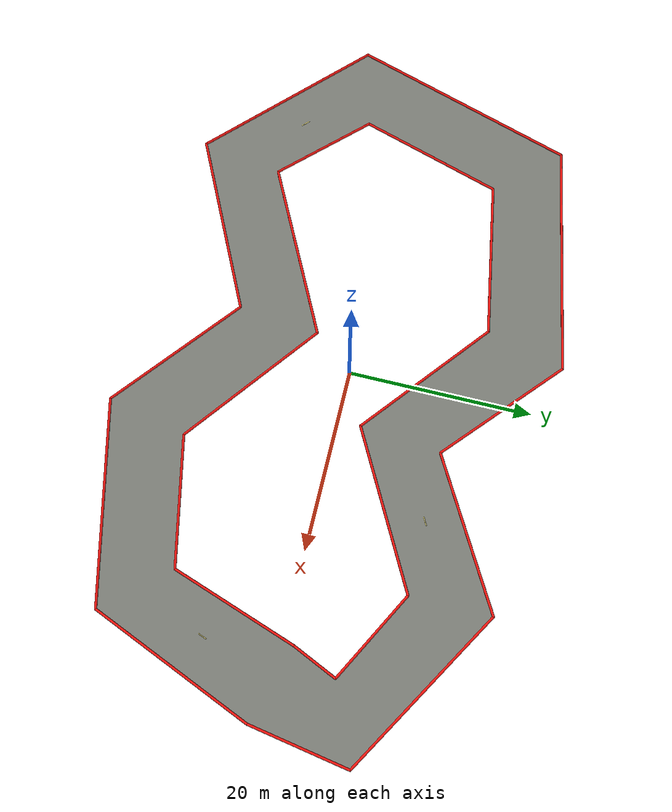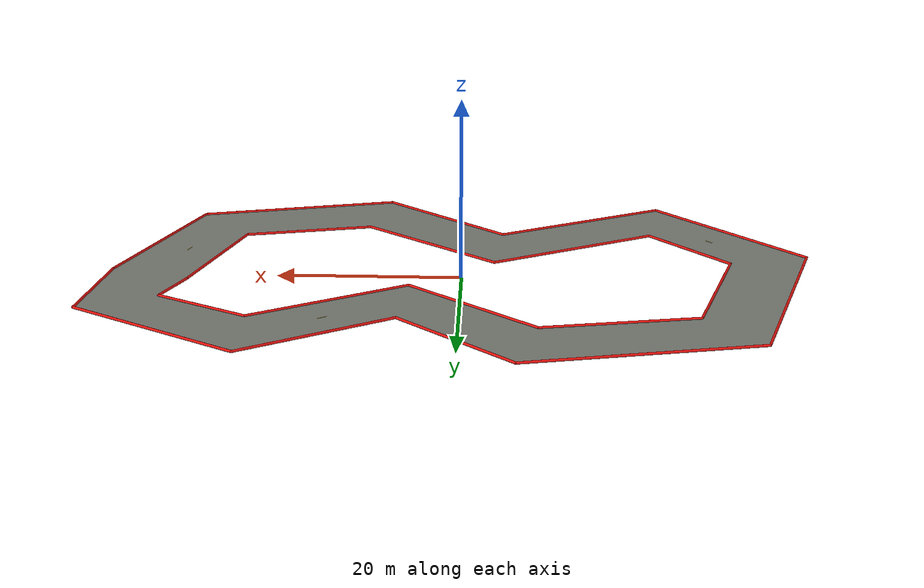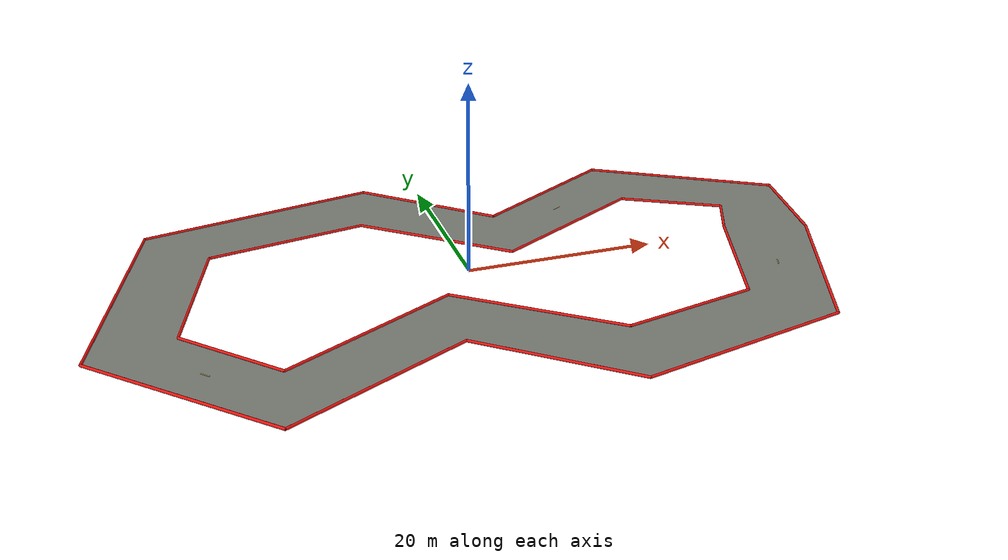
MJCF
<mujoco model="technical_track_visuals">
  <asset>
    <mesh name="track_surface_mesh" inertia="shell" vertex="38.29651 -1.33790 0.02200 30.95146 -19.39689 0.02200 9.00194 -24.38792 0.02200 -4.45445 -13.47699 0.02200 -22.72082 -22.44189 0.02200 -38.36346 -7.10010 0.02200 -31.01357 17.34192 0.02200 -5.85611 22.35219 0.02200 6.42656 11.47974 0.02200 22.01520 20.49997 0.02200 40.13891 9.76620 0.02200 29.70349 1.33790 0.02200 25.04854 -12.60311 0.02200 10.99806 -15.61208 0.02200 -3.54555 -4.52301 0.02200 -21.27918 -13.55811 0.02200 -29.63654 -4.89990 0.02200 -24.98643 10.65808 0.02200 -8.14389 13.64781 0.02200 5.57344 2.52026 0.02200 21.98480 11.50003 0.02200 31.86109 6.23380 0.02200" face="0 12 1 0 11 12 1 13 2 1 12 13 2 14 3 2 13 14 3 15 4 3 14 15 4 16 5 4 15 16 5 17 6 5 16 17 6 18 7 6 17 18 7 19 8 7 18 19 8 20 9 8 19 20 9 21 10 9 20 21 10 11 0 10 21 11"/>
    <material name="track_asphalt" rgba="0.48 0.49 0.46 1" emission="0.08"/>
    <material name="track_boundary" rgba="0.95 0.08 0.06 1" emission="0.05"/>
    <material name="track_centerline" rgba="1.0 0.95 0.55 1" emission="0.15"/>
  </asset>
  <worldbody>
    <geom name="track_surface" type="mesh" mesh="track_surface_mesh" material="track_asphalt" contype="0" conaffinity="0"/>
    <geom name="track_left_boundary_000" type="capsule" fromto="38.29651 -1.33790 0.09 30.95146 -19.39689 0.09" size="0.14" material="track_boundary" contype="0" conaffinity="0"/>
    <geom name="track_left_boundary_001" type="capsule" fromto="30.95146 -19.39689 0.09 9.00194 -24.38792 0.09" size="0.14" material="track_boundary" contype="0" conaffinity="0"/>
    <geom name="track_left_boundary_002" type="capsule" fromto="9.00194 -24.38792 0.09 -4.45445 -13.47699 0.09" size="0.14" material="track_boundary" contype="0" conaffinity="0"/>
    <geom name="track_left_boundary_003" type="capsule" fromto="-4.45445 -13.47699 0.09 -22.72082 -22.44189 0.09" size="0.14" material="track_boundary" contype="0" conaffinity="0"/>
    <geom name="track_left_boundary_004" type="capsule" fromto="-22.72082 -22.44189 0.09 -38.36346 -7.10010 0.09" size="0.14" material="track_boundary" contype="0" conaffinity="0"/>
    <geom name="track_left_boundary_005" type="capsule" fromto="-38.36346 -7.10010 0.09 -31.01357 17.34192 0.09" size="0.14" material="track_boundary" contype="0" conaffinity="0"/>
    <geom name="track_left_boundary_006" type="capsule" fromto="-31.01357 17.34192 0.09 -5.85611 22.35219 0.09" size="0.14" material="track_boundary" contype="0" conaffinity="0"/>
    <geom name="track_left_boundary_007" type="capsule" fromto="-5.85611 22.35219 0.09 6.42656 11.47974 0.09" size="0.14" material="track_boundary" contype="0" conaffinity="0"/>
    <geom name="track_left_boundary_008" type="capsule" fromto="6.42656 11.47974 0.09 22.01520 20.49997 0.09" size="0.14" material="track_boundary" contype="0" conaffinity="0"/>
    <geom name="track_left_boundary_009" type="capsule" fromto="22.01520 20.49997 0.09 40.13891 9.76620 0.09" size="0.14" material="track_boundary" contype="0" conaffinity="0"/>
    <geom name="track_left_boundary_010" type="capsule" fromto="40.13891 9.76620 0.09 38.29651 -1.33790 0.09" size="0.14" material="track_boundary" contype="0" conaffinity="0"/>
    <geom name="track_right_boundary_000" type="capsule" fromto="29.70349 1.33790 0.09 25.04854 -12.60311 0.09" size="0.14" material="track_boundary" contype="0" conaffinity="0"/>
    <geom name="track_right_boundary_001" type="capsule" fromto="25.04854 -12.60311 0.09 10.99806 -15.61208 0.09" size="0.14" material="track_boundary" contype="0" conaffinity="0"/>
    <geom name="track_right_boundary_002" type="capsule" fromto="10.99806 -15.61208 0.09 -3.54555 -4.52301 0.09" size="0.14" material="track_boundary" contype="0" conaffinity="0"/>
    <geom name="track_right_boundary_003" type="capsule" fromto="-3.54555 -4.52301 0.09 -21.27918 -13.55811 0.09" size="0.14" material="track_boundary" contype="0" conaffinity="0"/>
    <geom name="track_right_boundary_004" type="capsule" fromto="-21.27918 -13.55811 0.09 -29.63654 -4.89990 0.09" size="0.14" material="track_boundary" contype="0" conaffinity="0"/>
    <geom name="track_right_boundary_005" type="capsule" fromto="-29.63654 -4.89990 0.09 -24.98643 10.65808 0.09" size="0.14" material="track_boundary" contype="0" conaffinity="0"/>
    <geom name="track_right_boundary_006" type="capsule" fromto="-24.98643 10.65808 0.09 -8.14389 13.64781 0.09" size="0.14" material="track_boundary" contype="0" conaffinity="0"/>
    <geom name="track_right_boundary_007" type="capsule" fromto="-8.14389 13.64781 0.09 5.57344 2.52026 0.09" size="0.14" material="track_boundary" contype="0" conaffinity="0"/>
    <geom name="track_right_boundary_008" type="capsule" fromto="5.57344 2.52026 0.09 21.98480 11.50003 0.09" size="0.14" material="track_boundary" contype="0" conaffinity="0"/>
    <geom name="track_right_boundary_009" type="capsule" fromto="21.98480 11.50003 0.09 31.86109 6.23380 0.09" size="0.14" material="track_boundary" contype="0" conaffinity="0"/>
    <geom name="track_right_boundary_010" type="capsule" fromto="31.86109 6.23380 0.09 29.70349 1.33790 0.09" size="0.14" material="track_boundary" contype="0" conaffinity="0"/>
    <geom name="track_center_mark_000" type="box" pos="31.00000 -8.00000 0.045" euler="0 0 -110.55605" size="0.50000 0.04500 0.018" material="track_centerline" contype="0" conaffinity="0"/>
    <geom name="track_center_mark_004" type="box" pos="-28.00000 -12.00000 0.045" euler="0 0 135.00000" size="0.50000 0.04500 0.018" material="track_centerline" contype="0" conaffinity="0"/>
    <geom name="track_center_mark_008" type="box" pos="14.00000 11.50000 0.045" euler="0 0 29.35775" size="0.50000 0.04500 0.018" material="track_centerline" contype="0" conaffinity="0"/>
  </worldbody>
</mujoco>
